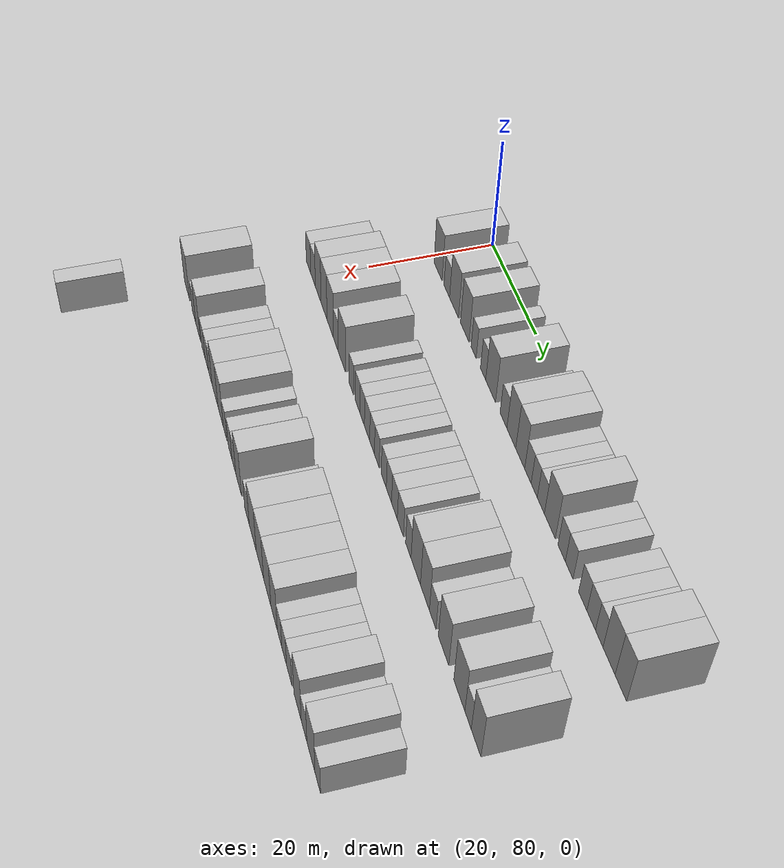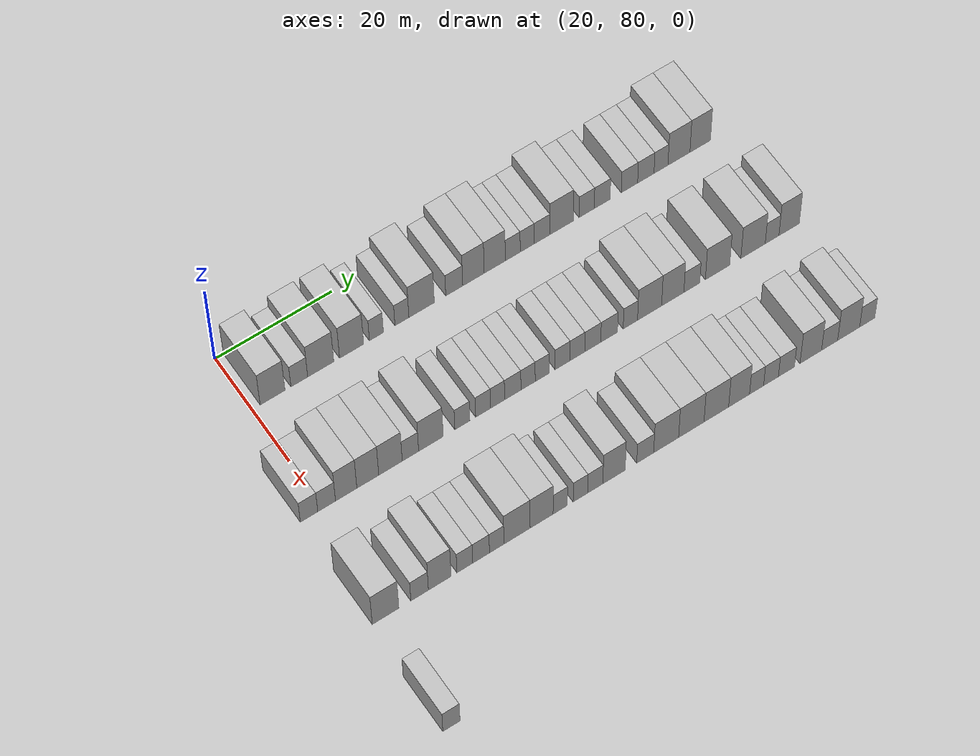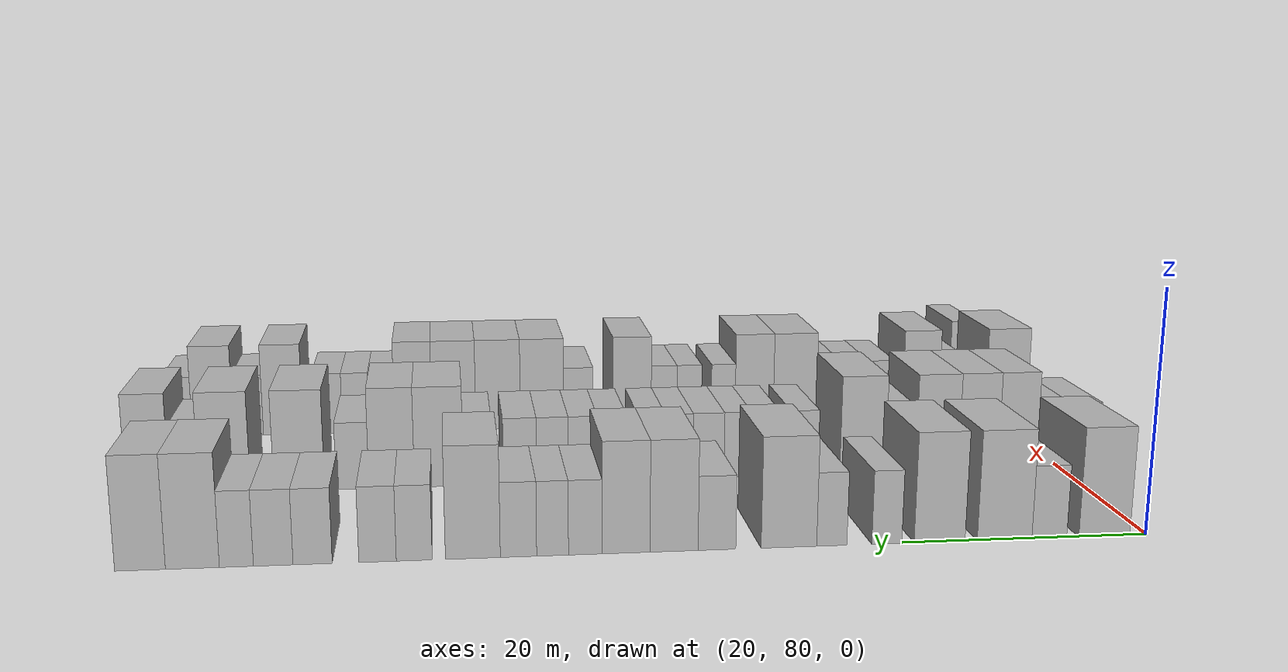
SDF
<sdf version="1.6">
 <world name="default">
  <model name="building_101">
   <static>1</static>
   <pose>25.0000 83.4963 0 0.000000 0.000000 0.000000</pose>
   <link name="link">
    <pose>0 0 4.50 0 0 0</pose>
    <collision name="collision"><geometry><box><size>10.0000 4.2292 9.0000</size></box></geometry></collision>
    <visual name="visual">
     <cast_shadows>0</cast_shadows>
     <geometry><box><size>10.0000 4.2292 9.0000</size></box></geometry>
     <material>
      <script>
       <uri>model://HANNAS_wall/materials/scripts</uri>
       <uri>model://HANNAS_wall/materials/textures</uri>
       <name>vrc/HANNAS_wall</name>
      </script>
     </material>
    </visual>
   </link>
  </model>
  <model name="building_102">
   <static>1</static>
   <pose>25.0000 88.0461 0 0.000000 0.000000 0.000000</pose>
   <link name="link">
    <pose>0 0 3.00 0 0 0</pose>
    <collision name="collision"><geometry><box><size>10.0000 2.8705 6.0000</size></box></geometry></collision>
    <visual name="visual">
     <cast_shadows>0</cast_shadows>
     <geometry><box><size>10.0000 2.8705 6.0000</size></box></geometry>
     <material>
      <script>
       <uri>model://HANNAS_wall/materials/scripts</uri>
       <uri>model://HANNAS_wall/materials/textures</uri>
       <name>vrc/HANNAS_wall</name>
      </script>
     </material>
    </visual>
   </link>
  </model>
  <model name="building_103">
   <static>1</static>
   <pose>25.0000 91.7144 0 0.000000 0.000000 0.000000</pose>
   <link name="link">
    <pose>0 0 4.50 0 0 0</pose>
    <collision name="collision"><geometry><box><size>10.0000 4.4660 9.0000</size></box></geometry></collision>
    <visual name="visual">
     <cast_shadows>0</cast_shadows>
     <geometry><box><size>10.0000 4.4660 9.0000</size></box></geometry>
     <material>
      <script>
       <uri>model://HANNAS_wall/materials/scripts</uri>
       <uri>model://HANNAS_wall/materials/textures</uri>
       <name>vrc/HANNAS_wall</name>
      </script>
     </material>
    </visual>
   </link>
  </model>
  <model name="building_104">
   <static>1</static>
   <pose>25.0000 97.0129 0 0.000000 0.000000 0.000000</pose>
   <link name="link">
    <pose>0 0 4.50 0 0 0</pose>
    <collision name="collision"><geometry><box><size>10.0000 4.1311 9.0000</size></box></geometry></collision>
    <visual name="visual">
     <cast_shadows>0</cast_shadows>
     <geometry><box><size>10.0000 4.1311 9.0000</size></box></geometry>
     <material>
      <script>
       <uri>model://HANNAS_wall/materials/scripts</uri>
       <uri>model://HANNAS_wall/materials/textures</uri>
       <name>vrc/HANNAS_wall</name>
      </script>
     </material>
    </visual>
   </link>
  </model>
  <model name="building_105">
   <static>1</static>
   <pose>25.0000 101.2852 0 0.000000 0.000000 0.000000</pose>
   <link name="link">
    <pose>0 0 3.00 0 0 0</pose>
    <collision name="collision"><geometry><box><size>10.0000 2.4136 6.0000</size></box></geometry></collision>
    <visual name="visual">
     <cast_shadows>0</cast_shadows>
     <geometry><box><size>10.0000 2.4136 6.0000</size></box></geometry>
     <material>
      <script>
       <uri>model://HANNAS_wall/materials/scripts</uri>
       <uri>model://HANNAS_wall/materials/textures</uri>
       <name>vrc/HANNAS_wall</name>
      </script>
     </material>
    </visual>
   </link>
  </model>
  <model name="building_106">
   <static>1</static>
   <pose>25.0000 105.7017 0 0.000000 0.000000 0.000000</pose>
   <link name="link">
    <pose>0 0 3.00 0 0 0</pose>
    <collision name="collision"><geometry><box><size>10.0000 2.4194 6.0000</size></box></geometry></collision>
    <visual name="visual">
     <cast_shadows>0</cast_shadows>
     <geometry><box><size>10.0000 2.4194 6.0000</size></box></geometry>
     <material>
      <script>
       <uri>model://HANNAS_wall/materials/scripts</uri>
       <uri>model://HANNAS_wall/materials/textures</uri>
       <name>vrc/HANNAS_wall</name>
      </script>
     </material>
    </visual>
   </link>
  </model>
  <model name="building_107">
   <static>1</static>
   <pose>25.0000 109.1212 0 0.000000 0.000000 0.000000</pose>
   <link name="link">
    <pose>0 0 4.50 0 0 0</pose>
    <collision name="collision"><geometry><box><size>10.0000 4.4195 9.0000</size></box></geometry></collision>
    <visual name="visual">
     <cast_shadows>0</cast_shadows>
     <geometry><box><size>10.0000 4.4195 9.0000</size></box></geometry>
     <material>
      <script>
       <uri>model://HANNAS_wall/materials/scripts</uri>
       <uri>model://HANNAS_wall/materials/textures</uri>
       <name>vrc/HANNAS_wall</name>
      </script>
     </material>
    </visual>
   </link>
  </model>
  <model name="building_108">
   <static>1</static>
   <pose>25.0000 114.8176 0 0.000000 0.000000 0.000000</pose>
   <link name="link">
    <pose>0 0 3.00 0 0 0</pose>
    <collision name="collision"><geometry><box><size>10.0000 2.9733 6.0000</size></box></geometry></collision>
    <visual name="visual">
     <cast_shadows>0</cast_shadows>
     <geometry><box><size>10.0000 2.9733 6.0000</size></box></geometry>
     <material>
      <script>
       <uri>model://HANNAS_wall/materials/scripts</uri>
       <uri>model://HANNAS_wall/materials/textures</uri>
       <name>vrc/HANNAS_wall</name>
      </script>
     </material>
    </visual>
   </link>
  </model>
  <model name="building_109">
   <static>1</static>
   <pose>25.0000 118.1870 0 0.000000 0.000000 0.000000</pose>
   <link name="link">
    <pose>0 0 4.50 0 0 0</pose>
    <collision name="collision"><geometry><box><size>10.0000 3.7657 9.0000</size></box></geometry></collision>
    <visual name="visual">
     <cast_shadows>0</cast_shadows>
     <geometry><box><size>10.0000 3.7657 9.0000</size></box></geometry>
     <material>
      <script>
       <uri>model://HANNAS_wall/materials/scripts</uri>
       <uri>model://HANNAS_wall/materials/textures</uri>
       <name>vrc/HANNAS_wall</name>
      </script>
     </material>
    </visual>
   </link>
  </model>
  <model name="building_110">
   <static>1</static>
   <pose>25.0000 121.9311 0 0.000000 0.000000 0.000000</pose>
   <link name="link">
    <pose>0 0 4.50 0 0 0</pose>
    <collision name="collision"><geometry><box><size>10.0000 3.7226 9.0000</size></box></geometry></collision>
    <visual name="visual">
     <cast_shadows>0</cast_shadows>
     <geometry><box><size>10.0000 3.7226 9.0000</size></box></geometry>
     <material>
      <script>
       <uri>model://HANNAS_wall/materials/scripts</uri>
       <uri>model://HANNAS_wall/materials/textures</uri>
       <name>vrc/HANNAS_wall</name>
      </script>
     </material>
    </visual>
   </link>
  </model>
  <model name="building_111">
   <static>1</static>
   <pose>25.0000 125.1039 0 0.000000 0.000000 0.000000</pose>
   <link name="link">
    <pose>0 0 3.00 0 0 0</pose>
    <collision name="collision"><geometry><box><size>10.0000 2.6230 6.0000</size></box></geometry></collision>
    <visual name="visual">
     <cast_shadows>0</cast_shadows>
     <geometry><box><size>10.0000 2.6230 6.0000</size></box></geometry>
     <material>
      <script>
       <uri>model://HANNAS_wall/materials/scripts</uri>
       <uri>model://HANNAS_wall/materials/textures</uri>
       <name>vrc/HANNAS_wall</name>
      </script>
     </material>
    </visual>
   </link>
  </model>
  <model name="building_112">
   <static>1</static>
   <pose>25.0000 127.6429 0 0.000000 0.000000 0.000000</pose>
   <link name="link">
    <pose>0 0 3.00 0 0 0</pose>
    <collision name="collision"><geometry><box><size>10.0000 2.4549 6.0000</size></box></geometry></collision>
    <visual name="visual">
     <cast_shadows>0</cast_shadows>
     <geometry><box><size>10.0000 2.4549 6.0000</size></box></geometry>
     <material>
      <script>
       <uri>model://HANNAS_wall/materials/scripts</uri>
       <uri>model://HANNAS_wall/materials/textures</uri>
       <name>vrc/HANNAS_wall</name>
      </script>
     </material>
    </visual>
   </link>
  </model>
  <model name="building_113">
   <static>1</static>
   <pose>25.0000 130.2681 0 0.000000 0.000000 0.000000</pose>
   <link name="link">
    <pose>0 0 3.00 0 0 0</pose>
    <collision name="collision"><geometry><box><size>10.0000 2.7955 6.0000</size></box></geometry></collision>
    <visual name="visual">
     <cast_shadows>0</cast_shadows>
     <geometry><box><size>10.0000 2.7955 6.0000</size></box></geometry>
     <material>
      <script>
       <uri>model://HANNAS_wall/materials/scripts</uri>
       <uri>model://HANNAS_wall/materials/textures</uri>
       <name>vrc/HANNAS_wall</name>
      </script>
     </material>
    </visual>
   </link>
  </model>
  <model name="building_114">
   <static>1</static>
   <pose>25.0000 133.7626 0 0.000000 0.000000 0.000000</pose>
   <link name="link">
    <pose>0 0 4.50 0 0 0</pose>
    <collision name="collision"><geometry><box><size>10.0000 4.1936 9.0000</size></box></geometry></collision>
    <visual name="visual">
     <cast_shadows>0</cast_shadows>
     <geometry><box><size>10.0000 4.1936 9.0000</size></box></geometry>
     <material>
      <script>
       <uri>model://HANNAS_wall/materials/scripts</uri>
       <uri>model://HANNAS_wall/materials/textures</uri>
       <name>vrc/HANNAS_wall</name>
      </script>
     </material>
    </visual>
   </link>
  </model>
  <model name="building_115">
   <static>1</static>
   <pose>25.0000 138.2246 0 0.000000 0.000000 0.000000</pose>
   <link name="link">
    <pose>0 0 3.00 0 0 0</pose>
    <collision name="collision"><geometry><box><size>10.0000 2.7302 6.0000</size></box></geometry></collision>
    <visual name="visual">
     <cast_shadows>0</cast_shadows>
     <geometry><box><size>10.0000 2.7302 6.0000</size></box></geometry>
     <material>
      <script>
       <uri>model://HANNAS_wall/materials/scripts</uri>
       <uri>model://HANNAS_wall/materials/textures</uri>
       <name>vrc/HANNAS_wall</name>
      </script>
     </material>
    </visual>
   </link>
  </model>
  <model name="building_116">
   <static>1</static>
   <pose>25.0000 141.0039 0 0.000000 0.000000 0.000000</pose>
   <link name="link">
    <pose>0 0 3.00 0 0 0</pose>
    <collision name="collision"><geometry><box><size>10.0000 2.8284 6.0000</size></box></geometry></collision>
    <visual name="visual">
     <cast_shadows>0</cast_shadows>
     <geometry><box><size>10.0000 2.8284 6.0000</size></box></geometry>
     <material>
      <script>
       <uri>model://HANNAS_wall/materials/scripts</uri>
       <uri>model://HANNAS_wall/materials/textures</uri>
       <name>vrc/HANNAS_wall</name>
      </script>
     </material>
    </visual>
   </link>
  </model>
  <model name="building_117">
   <static>1</static>
   <pose>25.0000 145.8851 0 0.000000 0.000000 0.000000</pose>
   <link name="link">
    <pose>0 0 3.00 0 0 0</pose>
    <collision name="collision"><geometry><box><size>10.0000 2.9339 6.0000</size></box></geometry></collision>
    <visual name="visual">
     <cast_shadows>0</cast_shadows>
     <geometry><box><size>10.0000 2.9339 6.0000</size></box></geometry>
     <material>
      <script>
       <uri>model://HANNAS_wall/materials/scripts</uri>
       <uri>model://HANNAS_wall/materials/textures</uri>
       <name>vrc/HANNAS_wall</name>
      </script>
     </material>
    </visual>
   </link>
  </model>
  <model name="building_118">
   <static>1</static>
   <pose>25.0000 148.8297 0 0.000000 0.000000 0.000000</pose>
   <link name="link">
    <pose>0 0 3.00 0 0 0</pose>
    <collision name="collision"><geometry><box><size>10.0000 2.9553 6.0000</size></box></geometry></collision>
    <visual name="visual">
     <cast_shadows>0</cast_shadows>
     <geometry><box><size>10.0000 2.9553 6.0000</size></box></geometry>
     <material>
      <script>
       <uri>model://HANNAS_wall/materials/scripts</uri>
       <uri>model://HANNAS_wall/materials/textures</uri>
       <name>vrc/HANNAS_wall</name>
      </script>
     </material>
    </visual>
   </link>
  </model>
  <model name="building_119">
   <static>1</static>
   <pose>25.0000 151.5702 0 0.000000 0.000000 0.000000</pose>
   <link name="link">
    <pose>0 0 3.00 0 0 0</pose>
    <collision name="collision"><geometry><box><size>10.0000 2.5258 6.0000</size></box></geometry></collision>
    <visual name="visual">
     <cast_shadows>0</cast_shadows>
     <geometry><box><size>10.0000 2.5258 6.0000</size></box></geometry>
     <material>
      <script>
       <uri>model://HANNAS_wall/materials/scripts</uri>
       <uri>model://HANNAS_wall/materials/textures</uri>
       <name>vrc/HANNAS_wall</name>
      </script>
     </material>
    </visual>
   </link>
  </model>
  <model name="building_120">
   <static>1</static>
   <pose>25.0000 154.8257 0 0.000000 0.000000 0.000000</pose>
   <link name="link">
    <pose>0 0 4.50 0 0 0</pose>
    <collision name="collision"><geometry><box><size>10.0000 3.9853 9.0000</size></box></geometry></collision>
    <visual name="visual">
     <cast_shadows>0</cast_shadows>
     <geometry><box><size>10.0000 3.9853 9.0000</size></box></geometry>
     <material>
      <script>
       <uri>model://HANNAS_wall/materials/scripts</uri>
       <uri>model://HANNAS_wall/materials/textures</uri>
       <name>vrc/HANNAS_wall</name>
      </script>
     </material>
    </visual>
   </link>
  </model>
  <model name="building_121">
   <static>1</static>
   <pose>25.0000 158.6795 0 0.000000 0.000000 0.000000</pose>
   <link name="link">
    <pose>0 0 4.50 0 0 0</pose>
    <collision name="collision"><geometry><box><size>10.0000 3.7222 9.0000</size></box></geometry></collision>
    <visual name="visual">
     <cast_shadows>0</cast_shadows>
     <geometry><box><size>10.0000 3.7222 9.0000</size></box></geometry>
     <material>
      <script>
       <uri>model://HANNAS_wall/materials/scripts</uri>
       <uri>model://HANNAS_wall/materials/textures</uri>
       <name>vrc/HANNAS_wall</name>
      </script>
     </material>
    </visual>
   </link>
  </model>
  <model name="building_269">
   <static>1</static>
   <pose>44.0000 77.6205 0 0.000000 0.000000 0.000000</pose>
   <link name="link">
    <pose>0 0 3.00 0 0 0</pose>
    <collision name="collision"><geometry><box><size>10.0000 2.9257 6.0000</size></box></geometry></collision>
    <visual name="visual">
     <cast_shadows>0</cast_shadows>
     <geometry><box><size>10.0000 2.9257 6.0000</size></box></geometry>
     <material>
      <script>
       <uri>model://HANNAS_wall/materials/scripts</uri>
       <uri>model://HANNAS_wall/materials/textures</uri>
       <name>vrc/HANNAS_wall</name>
      </script>
     </material>
    </visual>
   </link>
  </model>
  <model name="building_270">
   <static>1</static>
   <pose>44.0000 80.5798 0 0.000000 0.000000 0.000000</pose>
   <link name="link">
    <pose>0 0 3.00 0 0 0</pose>
    <collision name="collision"><geometry><box><size>10.0000 2.9930 6.0000</size></box></geometry></collision>
    <visual name="visual">
     <cast_shadows>0</cast_shadows>
     <geometry><box><size>10.0000 2.9930 6.0000</size></box></geometry>
     <material>
      <script>
       <uri>model://HANNAS_wall/materials/scripts</uri>
       <uri>model://HANNAS_wall/materials/textures</uri>
       <name>vrc/HANNAS_wall</name>
      </script>
     </material>
    </visual>
   </link>
  </model>
  <model name="building_271">
   <static>1</static>
   <pose>44.0000 83.8766 0 0.000000 0.000000 0.000000</pose>
   <link name="link">
    <pose>0 0 4.50 0 0 0</pose>
    <collision name="collision"><geometry><box><size>10.0000 3.6007 9.0000</size></box></geometry></collision>
    <visual name="visual">
     <cast_shadows>0</cast_shadows>
     <geometry><box><size>10.0000 3.6007 9.0000</size></box></geometry>
     <material>
      <script>
       <uri>model://HANNAS_wall/materials/scripts</uri>
       <uri>model://HANNAS_wall/materials/textures</uri>
       <name>vrc/HANNAS_wall</name>
      </script>
     </material>
    </visual>
   </link>
  </model>
  <model name="building_272">
   <static>1</static>
   <pose>44.0000 87.5289 0 0.000000 0.000000 0.000000</pose>
   <link name="link">
    <pose>0 0 4.50 0 0 0</pose>
    <collision name="collision"><geometry><box><size>10.0000 3.7039 9.0000</size></box></geometry></collision>
    <visual name="visual">
     <cast_shadows>0</cast_shadows>
     <geometry><box><size>10.0000 3.7039 9.0000</size></box></geometry>
     <material>
      <script>
       <uri>model://HANNAS_wall/materials/scripts</uri>
       <uri>model://HANNAS_wall/materials/textures</uri>
       <name>vrc/HANNAS_wall</name>
      </script>
     </material>
    </visual>
   </link>
  </model>
  <model name="building_273">
   <static>1</static>
   <pose>44.0000 91.3777 0 0.000000 0.000000 0.000000</pose>
   <link name="link">
    <pose>0 0 4.50 0 0 0</pose>
    <collision name="collision"><geometry><box><size>10.0000 3.9936 9.0000</size></box></geometry></collision>
    <visual name="visual">
     <cast_shadows>0</cast_shadows>
     <geometry><box><size>10.0000 3.9936 9.0000</size></box></geometry>
     <material>
      <script>
       <uri>model://HANNAS_wall/materials/scripts</uri>
       <uri>model://HANNAS_wall/materials/textures</uri>
       <name>vrc/HANNAS_wall</name>
      </script>
     </material>
    </visual>
   </link>
  </model>
  <model name="building_274">
   <static>1</static>
   <pose>44.0000 94.7728 0 0.000000 0.000000 0.000000</pose>
   <link name="link">
    <pose>0 0 3.00 0 0 0</pose>
    <collision name="collision"><geometry><box><size>10.0000 2.7967 6.0000</size></box></geometry></collision>
    <visual name="visual">
     <cast_shadows>0</cast_shadows>
     <geometry><box><size>10.0000 2.7967 6.0000</size></box></geometry>
     <material>
      <script>
       <uri>model://HANNAS_wall/materials/scripts</uri>
       <uri>model://HANNAS_wall/materials/textures</uri>
       <name>vrc/HANNAS_wall</name>
      </script>
     </material>
    </visual>
   </link>
  </model>
  <model name="building_275">
   <static>1</static>
   <pose>44.0000 98.2723 0 0.000000 0.000000 0.000000</pose>
   <link name="link">
    <pose>0 0 4.50 0 0 0</pose>
    <collision name="collision"><geometry><box><size>10.0000 4.2023 9.0000</size></box></geometry></collision>
    <visual name="visual">
     <cast_shadows>0</cast_shadows>
     <geometry><box><size>10.0000 4.2023 9.0000</size></box></geometry>
     <material>
      <script>
       <uri>model://HANNAS_wall/materials/scripts</uri>
       <uri>model://HANNAS_wall/materials/textures</uri>
       <name>vrc/HANNAS_wall</name>
      </script>
     </material>
    </visual>
   </link>
  </model>
  <model name="building_276">
   <static>1</static>
   <pose>44.0000 103.6641 0 0.000000 0.000000 0.000000</pose>
   <link name="link">
    <pose>0 0 3.00 0 0 0</pose>
    <collision name="collision"><geometry><box><size>10.0000 2.5812 6.0000</size></box></geometry></collision>
    <visual name="visual">
     <cast_shadows>0</cast_shadows>
     <geometry><box><size>10.0000 2.5812 6.0000</size></box></geometry>
     <material>
      <script>
       <uri>model://HANNAS_wall/materials/scripts</uri>
       <uri>model://HANNAS_wall/materials/textures</uri>
       <name>vrc/HANNAS_wall</name>
      </script>
     </material>
    </visual>
   </link>
  </model>
  <model name="building_277">
   <static>1</static>
   <pose>44.0000 107.2426 0 0.000000 0.000000 0.000000</pose>
   <link name="link">
    <pose>0 0 3.00 0 0 0</pose>
    <collision name="collision"><geometry><box><size>10.0000 2.5758 6.0000</size></box></geometry></collision>
    <visual name="visual">
     <cast_shadows>0</cast_shadows>
     <geometry><box><size>10.0000 2.5758 6.0000</size></box></geometry>
     <material>
      <script>
       <uri>model://HANNAS_wall/materials/scripts</uri>
       <uri>model://HANNAS_wall/materials/textures</uri>
       <name>vrc/HANNAS_wall</name>
      </script>
     </material>
    </visual>
   </link>
  </model>
  <model name="building_278">
   <static>1</static>
   <pose>44.0000 109.7421 0 0.000000 0.000000 0.000000</pose>
   <link name="link">
    <pose>0 0 3.00 0 0 0</pose>
    <collision name="collision"><geometry><box><size>10.0000 2.4234 6.0000</size></box></geometry></collision>
    <visual name="visual">
     <cast_shadows>0</cast_shadows>
     <geometry><box><size>10.0000 2.4234 6.0000</size></box></geometry>
     <material>
      <script>
       <uri>model://HANNAS_wall/materials/scripts</uri>
       <uri>model://HANNAS_wall/materials/textures</uri>
       <name>vrc/HANNAS_wall</name>
      </script>
     </material>
    </visual>
   </link>
  </model>
  <model name="building_279">
   <static>1</static>
   <pose>44.0000 112.3672 0 0.000000 0.000000 0.000000</pose>
   <link name="link">
    <pose>0 0 3.00 0 0 0</pose>
    <collision name="collision"><geometry><box><size>10.0000 2.8268 6.0000</size></box></geometry></collision>
    <visual name="visual">
     <cast_shadows>0</cast_shadows>
     <geometry><box><size>10.0000 2.8268 6.0000</size></box></geometry>
     <material>
      <script>
       <uri>model://HANNAS_wall/materials/scripts</uri>
       <uri>model://HANNAS_wall/materials/textures</uri>
       <name>vrc/HANNAS_wall</name>
      </script>
     </material>
    </visual>
   </link>
  </model>
  <model name="building_280">
   <static>1</static>
   <pose>44.0000 115.0189 0 0.000000 0.000000 0.000000</pose>
   <link name="link">
    <pose>0 0 3.00 0 0 0</pose>
    <collision name="collision"><geometry><box><size>10.0000 2.4765 6.0000</size></box></geometry></collision>
    <visual name="visual">
     <cast_shadows>0</cast_shadows>
     <geometry><box><size>10.0000 2.4765 6.0000</size></box></geometry>
     <material>
      <script>
       <uri>model://HANNAS_wall/materials/scripts</uri>
       <uri>model://HANNAS_wall/materials/textures</uri>
       <name>vrc/HANNAS_wall</name>
      </script>
     </material>
    </visual>
   </link>
  </model>
  <model name="building_281">
   <static>1</static>
   <pose>44.0000 117.4946 0 0.000000 0.000000 0.000000</pose>
   <link name="link">
    <pose>0 0 3.00 0 0 0</pose>
    <collision name="collision"><geometry><box><size>10.0000 2.4749 6.0000</size></box></geometry></collision>
    <visual name="visual">
     <cast_shadows>0</cast_shadows>
     <geometry><box><size>10.0000 2.4749 6.0000</size></box></geometry>
     <material>
      <script>
       <uri>model://HANNAS_wall/materials/scripts</uri>
       <uri>model://HANNAS_wall/materials/textures</uri>
       <name>vrc/HANNAS_wall</name>
      </script>
     </material>
    </visual>
   </link>
  </model>
  <model name="building_282">
   <static>1</static>
   <pose>44.0000 121.0312 0 0.000000 0.000000 0.000000</pose>
   <link name="link">
    <pose>0 0 3.00 0 0 0</pose>
    <collision name="collision"><geometry><box><size>10.0000 2.5983 6.0000</size></box></geometry></collision>
    <visual name="visual">
     <cast_shadows>0</cast_shadows>
     <geometry><box><size>10.0000 2.5983 6.0000</size></box></geometry>
     <material>
      <script>
       <uri>model://HANNAS_wall/materials/scripts</uri>
       <uri>model://HANNAS_wall/materials/textures</uri>
       <name>vrc/HANNAS_wall</name>
      </script>
     </material>
    </visual>
   </link>
  </model>
  <model name="building_283">
   <static>1</static>
   <pose>44.0000 123.6171 0 0.000000 0.000000 0.000000</pose>
   <link name="link">
    <pose>0 0 3.00 0 0 0</pose>
    <collision name="collision"><geometry><box><size>10.0000 2.5735 6.0000</size></box></geometry></collision>
    <visual name="visual">
     <cast_shadows>0</cast_shadows>
     <geometry><box><size>10.0000 2.5735 6.0000</size></box></geometry>
     <material>
      <script>
       <uri>model://HANNAS_wall/materials/scripts</uri>
       <uri>model://HANNAS_wall/materials/textures</uri>
       <name>vrc/HANNAS_wall</name>
      </script>
     </material>
    </visual>
   </link>
  </model>
  <model name="building_284">
   <static>1</static>
   <pose>44.0000 126.3140 0 0.000000 0.000000 0.000000</pose>
   <link name="link">
    <pose>0 0 3.00 0 0 0</pose>
    <collision name="collision"><geometry><box><size>10.0000 2.8205 6.0000</size></box></geometry></collision>
    <visual name="visual">
     <cast_shadows>0</cast_shadows>
     <geometry><box><size>10.0000 2.8205 6.0000</size></box></geometry>
     <material>
      <script>
       <uri>model://HANNAS_wall/materials/scripts</uri>
       <uri>model://HANNAS_wall/materials/textures</uri>
       <name>vrc/HANNAS_wall</name>
      </script>
     </material>
    </visual>
   </link>
  </model>
  <model name="building_285">
   <static>1</static>
   <pose>44.0000 129.1944 0 0.000000 0.000000 0.000000</pose>
   <link name="link">
    <pose>0 0 3.00 0 0 0</pose>
    <collision name="collision"><geometry><box><size>10.0000 2.9402 6.0000</size></box></geometry></collision>
    <visual name="visual">
     <cast_shadows>0</cast_shadows>
     <geometry><box><size>10.0000 2.9402 6.0000</size></box></geometry>
     <material>
      <script>
       <uri>model://HANNAS_wall/materials/scripts</uri>
       <uri>model://HANNAS_wall/materials/textures</uri>
       <name>vrc/HANNAS_wall</name>
      </script>
     </material>
    </visual>
   </link>
  </model>
  <model name="building_286">
   <static>1</static>
   <pose>44.0000 132.9292 0 0.000000 0.000000 0.000000</pose>
   <link name="link">
    <pose>0 0 3.00 0 0 0</pose>
    <collision name="collision"><geometry><box><size>10.0000 2.5294 6.0000</size></box></geometry></collision>
    <visual name="visual">
     <cast_shadows>0</cast_shadows>
     <geometry><box><size>10.0000 2.5294 6.0000</size></box></geometry>
     <material>
      <script>
       <uri>model://HANNAS_wall/materials/scripts</uri>
       <uri>model://HANNAS_wall/materials/textures</uri>
       <name>vrc/HANNAS_wall</name>
      </script>
     </material>
    </visual>
   </link>
  </model>
  <model name="building_287">
   <static>1</static>
   <pose>44.0000 136.3269 0 0.000000 0.000000 0.000000</pose>
   <link name="link">
    <pose>0 0 4.50 0 0 0</pose>
    <collision name="collision"><geometry><box><size>10.0000 4.2661 9.0000</size></box></geometry></collision>
    <visual name="visual">
     <cast_shadows>0</cast_shadows>
     <geometry><box><size>10.0000 4.2661 9.0000</size></box></geometry>
     <material>
      <script>
       <uri>model://HANNAS_wall/materials/scripts</uri>
       <uri>model://HANNAS_wall/materials/textures</uri>
       <name>vrc/HANNAS_wall</name>
      </script>
     </material>
    </visual>
   </link>
  </model>
  <model name="building_288">
   <static>1</static>
   <pose>44.0000 140.4397 0 0.000000 0.000000 0.000000</pose>
   <link name="link">
    <pose>0 0 4.50 0 0 0</pose>
    <collision name="collision"><geometry><box><size>10.0000 3.9594 9.0000</size></box></geometry></collision>
    <visual name="visual">
     <cast_shadows>0</cast_shadows>
     <geometry><box><size>10.0000 3.9594 9.0000</size></box></geometry>
     <material>
      <script>
       <uri>model://HANNAS_wall/materials/scripts</uri>
       <uri>model://HANNAS_wall/materials/textures</uri>
       <name>vrc/HANNAS_wall</name>
      </script>
     </material>
    </visual>
   </link>
  </model>
  <model name="building_289">
   <static>1</static>
   <pose>44.0000 143.8342 0 0.000000 0.000000 0.000000</pose>
   <link name="link">
    <pose>0 0 3.00 0 0 0</pose>
    <collision name="collision"><geometry><box><size>10.0000 2.8296 6.0000</size></box></geometry></collision>
    <visual name="visual">
     <cast_shadows>0</cast_shadows>
     <geometry><box><size>10.0000 2.8296 6.0000</size></box></geometry>
     <material>
      <script>
       <uri>model://HANNAS_wall/materials/scripts</uri>
       <uri>model://HANNAS_wall/materials/textures</uri>
       <name>vrc/HANNAS_wall</name>
      </script>
     </material>
    </visual>
   </link>
  </model>
  <model name="building_290">
   <static>1</static>
   <pose>44.0000 148.4282 0 0.000000 0.000000 0.000000</pose>
   <link name="link">
    <pose>0 0 4.50 0 0 0</pose>
    <collision name="collision"><geometry><box><size>10.0000 4.3584 9.0000</size></box></geometry></collision>
    <visual name="visual">
     <cast_shadows>0</cast_shadows>
     <geometry><box><size>10.0000 4.3584 9.0000</size></box></geometry>
     <material>
      <script>
       <uri>model://HANNAS_wall/materials/scripts</uri>
       <uri>model://HANNAS_wall/materials/textures</uri>
       <name>vrc/HANNAS_wall</name>
      </script>
     </material>
    </visual>
   </link>
  </model>
  <model name="building_291">
   <static>1</static>
   <pose>44.0000 154.8033 0 0.000000 0.000000 0.000000</pose>
   <link name="link">
    <pose>0 0 4.50 0 0 0</pose>
    <collision name="collision"><geometry><box><size>10.0000 4.3918 9.0000</size></box></geometry></collision>
    <visual name="visual">
     <cast_shadows>0</cast_shadows>
     <geometry><box><size>10.0000 4.3918 9.0000</size></box></geometry>
     <material>
      <script>
       <uri>model://HANNAS_wall/materials/scripts</uri>
       <uri>model://HANNAS_wall/materials/textures</uri>
       <name>vrc/HANNAS_wall</name>
      </script>
     </material>
    </visual>
   </link>
  </model>
  <model name="building_292">
   <static>1</static>
   <pose>44.0000 158.2389 0 0.000000 0.000000 0.000000</pose>
   <link name="link">
    <pose>0 0 3.00 0 0 0</pose>
    <collision name="collision"><geometry><box><size>10.0000 2.4793 6.0000</size></box></geometry></collision>
    <visual name="visual">
     <cast_shadows>0</cast_shadows>
     <geometry><box><size>10.0000 2.4793 6.0000</size></box></geometry>
     <material>
      <script>
       <uri>model://HANNAS_wall/materials/scripts</uri>
       <uri>model://HANNAS_wall/materials/textures</uri>
       <name>vrc/HANNAS_wall</name>
      </script>
     </material>
    </visual>
   </link>
  </model>
  <model name="building_293">
   <static>1</static>
   <pose>44.0000 161.3177 0 0.000000 0.000000 0.000000</pose>
   <link name="link">
    <pose>0 0 4.50 0 0 0</pose>
    <collision name="collision"><geometry><box><size>10.0000 3.6782 9.0000</size></box></geometry></collision>
    <visual name="visual">
     <cast_shadows>0</cast_shadows>
     <geometry><box><size>10.0000 3.6782 9.0000</size></box></geometry>
     <material>
      <script>
       <uri>model://HANNAS_wall/materials/scripts</uri>
       <uri>model://HANNAS_wall/materials/textures</uri>
       <name>vrc/HANNAS_wall</name>
      </script>
     </material>
    </visual>
   </link>
  </model>
  <model name="building_453">
   <static>1</static>
   <pose>63.0000 78.2139 0 0.000000 0.000000 0.000000</pose>
   <link name="link">
    <pose>0 0 4.50 0 0 0</pose>
    <collision name="collision"><geometry><box><size>10.0000 4.4359 9.0000</size></box></geometry></collision>
    <visual name="visual">
     <cast_shadows>0</cast_shadows>
     <geometry><box><size>10.0000 4.4359 9.0000</size></box></geometry>
     <material>
      <script>
       <uri>model://HANNAS_wall/materials/scripts</uri>
       <uri>model://HANNAS_wall/materials/textures</uri>
       <name>vrc/HANNAS_wall</name>
      </script>
     </material>
    </visual>
   </link>
  </model>
  <model name="building_454">
   <static>1</static>
   <pose>63.0000 83.9051 0 0.000000 0.000000 0.000000</pose>
   <link name="link">
    <pose>0 0 3.00 0 0 0</pose>
    <collision name="collision"><geometry><box><size>10.0000 2.9465 6.0000</size></box></geometry></collision>
    <visual name="visual">
     <cast_shadows>0</cast_shadows>
     <geometry><box><size>10.0000 2.9465 6.0000</size></box></geometry>
     <material>
      <script>
       <uri>model://HANNAS_wall/materials/scripts</uri>
       <uri>model://HANNAS_wall/materials/textures</uri>
       <name>vrc/HANNAS_wall</name>
      </script>
     </material>
    </visual>
   </link>
  </model>
  <model name="building_455">
   <static>1</static>
   <pose>63.0000 87.2789 0 0.000000 0.000000 0.000000</pose>
   <link name="link">
    <pose>0 0 4.50 0 0 0</pose>
    <collision name="collision"><geometry><box><size>10.0000 3.8010 9.0000</size></box></geometry></collision>
    <visual name="visual">
     <cast_shadows>0</cast_shadows>
     <geometry><box><size>10.0000 3.8010 9.0000</size></box></geometry>
     <material>
      <script>
       <uri>model://HANNAS_wall/materials/scripts</uri>
       <uri>model://HANNAS_wall/materials/textures</uri>
       <name>vrc/HANNAS_wall</name>
      </script>
     </material>
    </visual>
   </link>
  </model>
  <model name="building_456">
   <static>1</static>
   <pose>63.0000 91.5072 0 0.000000 0.000000 0.000000</pose>
   <link name="link">
    <pose>0 0 3.00 0 0 0</pose>
    <collision name="collision"><geometry><box><size>10.0000 2.6557 6.0000</size></box></geometry></collision>
    <visual name="visual">
     <cast_shadows>0</cast_shadows>
     <geometry><box><size>10.0000 2.6557 6.0000</size></box></geometry>
     <material>
      <script>
       <uri>model://HANNAS_wall/materials/scripts</uri>
       <uri>model://HANNAS_wall/materials/textures</uri>
       <name>vrc/HANNAS_wall</name>
      </script>
     </material>
    </visual>
   </link>
  </model>
  <model name="building_457">
   <static>1</static>
   <pose>63.0000 94.2543 0 0.000000 0.000000 0.000000</pose>
   <link name="link">
    <pose>0 0 3.00 0 0 0</pose>
    <collision name="collision"><geometry><box><size>10.0000 2.8384 6.0000</size></box></geometry></collision>
    <visual name="visual">
     <cast_shadows>0</cast_shadows>
     <geometry><box><size>10.0000 2.8384 6.0000</size></box></geometry>
     <material>
      <script>
       <uri>model://HANNAS_wall/materials/scripts</uri>
       <uri>model://HANNAS_wall/materials/textures</uri>
       <name>vrc/HANNAS_wall</name>
      </script>
     </material>
    </visual>
   </link>
  </model>
  <model name="building_458">
   <static>1</static>
   <pose>63.0000 96.9023 0 0.000000 0.000000 0.000000</pose>
   <link name="link">
    <pose>0 0 3.00 0 0 0</pose>
    <collision name="collision"><geometry><box><size>10.0000 2.4577 6.0000</size></box></geometry></collision>
    <visual name="visual">
     <cast_shadows>0</cast_shadows>
     <geometry><box><size>10.0000 2.4577 6.0000</size></box></geometry>
     <material>
      <script>
       <uri>model://HANNAS_wall/materials/scripts</uri>
       <uri>model://HANNAS_wall/materials/textures</uri>
       <name>vrc/HANNAS_wall</name>
      </script>
     </material>
    </visual>
   </link>
  </model>
  <model name="building_459">
   <static>1</static>
   <pose>63.0000 100.3597 0 0.000000 0.000000 0.000000</pose>
   <link name="link">
    <pose>0 0 4.50 0 0 0</pose>
    <collision name="collision"><geometry><box><size>10.0000 4.4569 9.0000</size></box></geometry></collision>
    <visual name="visual">
     <cast_shadows>0</cast_shadows>
     <geometry><box><size>10.0000 4.4569 9.0000</size></box></geometry>
     <material>
      <script>
       <uri>model://HANNAS_wall/materials/scripts</uri>
       <uri>model://HANNAS_wall/materials/textures</uri>
       <name>vrc/HANNAS_wall</name>
      </script>
     </material>
    </visual>
   </link>
  </model>
  <model name="building_460">
   <static>1</static>
   <pose>63.0000 104.5477 0 0.000000 0.000000 0.000000</pose>
   <link name="link">
    <pose>0 0 4.50 0 0 0</pose>
    <collision name="collision"><geometry><box><size>10.0000 3.9192 9.0000</size></box></geometry></collision>
    <visual name="visual">
     <cast_shadows>0</cast_shadows>
     <geometry><box><size>10.0000 3.9192 9.0000</size></box></geometry>
     <material>
      <script>
       <uri>model://HANNAS_wall/materials/scripts</uri>
       <uri>model://HANNAS_wall/materials/textures</uri>
       <name>vrc/HANNAS_wall</name>
      </script>
     </material>
    </visual>
   </link>
  </model>
  <model name="building_461">
   <static>1</static>
   <pose>63.0000 107.7293 0 0.000000 0.000000 0.000000</pose>
   <link name="link">
    <pose>0 0 3.00 0 0 0</pose>
    <collision name="collision"><geometry><box><size>10.0000 2.4439 6.0000</size></box></geometry></collision>
    <visual name="visual">
     <cast_shadows>0</cast_shadows>
     <geometry><box><size>10.0000 2.4439 6.0000</size></box></geometry>
     <material>
      <script>
       <uri>model://HANNAS_wall/materials/scripts</uri>
       <uri>model://HANNAS_wall/materials/textures</uri>
       <name>vrc/HANNAS_wall</name>
      </script>
     </material>
    </visual>
   </link>
  </model>
  <model name="building_462">
   <static>1</static>
   <pose>63.0000 111.2057 0 0.000000 0.000000 0.000000</pose>
   <link name="link">
    <pose>0 0 3.00 0 0 0</pose>
    <collision name="collision"><geometry><box><size>10.0000 2.5087 6.0000</size></box></geometry></collision>
    <visual name="visual">
     <cast_shadows>0</cast_shadows>
     <geometry><box><size>10.0000 2.5087 6.0000</size></box></geometry>
     <material>
      <script>
       <uri>model://HANNAS_wall/materials/scripts</uri>
       <uri>model://HANNAS_wall/materials/textures</uri>
       <name>vrc/HANNAS_wall</name>
      </script>
     </material>
    </visual>
   </link>
  </model>
  <model name="building_463">
   <static>1</static>
   <pose>63.0000 113.7598 0 0.000000 0.000000 0.000000</pose>
   <link name="link">
    <pose>0 0 3.00 0 0 0</pose>
    <collision name="collision"><geometry><box><size>10.0000 2.5996 6.0000</size></box></geometry></collision>
    <visual name="visual">
     <cast_shadows>0</cast_shadows>
     <geometry><box><size>10.0000 2.5996 6.0000</size></box></geometry>
     <material>
      <script>
       <uri>model://HANNAS_wall/materials/scripts</uri>
       <uri>model://HANNAS_wall/materials/textures</uri>
       <name>vrc/HANNAS_wall</name>
      </script>
     </material>
    </visual>
   </link>
  </model>
  <model name="building_464">
   <static>1</static>
   <pose>63.0000 116.9877 0 0.000000 0.000000 0.000000</pose>
   <link name="link">
    <pose>0 0 4.50 0 0 0</pose>
    <collision name="collision"><geometry><box><size>10.0000 3.8562 9.0000</size></box></geometry></collision>
    <visual name="visual">
     <cast_shadows>0</cast_shadows>
     <geometry><box><size>10.0000 3.8562 9.0000</size></box></geometry>
     <material>
      <script>
       <uri>model://HANNAS_wall/materials/scripts</uri>
       <uri>model://HANNAS_wall/materials/textures</uri>
       <name>vrc/HANNAS_wall</name>
      </script>
     </material>
    </visual>
   </link>
  </model>
  <model name="building_465">
   <static>1</static>
   <pose>63.0000 122.3874 0 0.000000 0.000000 0.000000</pose>
   <link name="link">
    <pose>0 0 3.00 0 0 0</pose>
    <collision name="collision"><geometry><box><size>10.0000 2.9430 6.0000</size></box></geometry></collision>
    <visual name="visual">
     <cast_shadows>0</cast_shadows>
     <geometry><box><size>10.0000 2.9430 6.0000</size></box></geometry>
     <material>
      <script>
       <uri>model://HANNAS_wall/materials/scripts</uri>
       <uri>model://HANNAS_wall/materials/textures</uri>
       <name>vrc/HANNAS_wall</name>
      </script>
     </material>
    </visual>
   </link>
  </model>
  <model name="building_466">
   <static>1</static>
   <pose>63.0000 126.0303 0 0.000000 0.000000 0.000000</pose>
   <link name="link">
    <pose>0 0 4.50 0 0 0</pose>
    <collision name="collision"><geometry><box><size>10.0000 4.3429 9.0000</size></box></geometry></collision>
    <visual name="visual">
     <cast_shadows>0</cast_shadows>
     <geometry><box><size>10.0000 4.3429 9.0000</size></box></geometry>
     <material>
      <script>
       <uri>model://HANNAS_wall/materials/scripts</uri>
       <uri>model://HANNAS_wall/materials/textures</uri>
       <name>vrc/HANNAS_wall</name>
      </script>
     </material>
    </visual>
   </link>
  </model>
  <model name="building_467">
   <static>1</static>
   <pose>63.0000 130.4237 0 0.000000 0.000000 0.000000</pose>
   <link name="link">
    <pose>0 0 4.50 0 0 0</pose>
    <collision name="collision"><geometry><box><size>10.0000 4.4438 9.0000</size></box></geometry></collision>
    <visual name="visual">
     <cast_shadows>0</cast_shadows>
     <geometry><box><size>10.0000 4.4438 9.0000</size></box></geometry>
     <material>
      <script>
       <uri>model://HANNAS_wall/materials/scripts</uri>
       <uri>model://HANNAS_wall/materials/textures</uri>
       <name>vrc/HANNAS_wall</name>
      </script>
     </material>
    </visual>
   </link>
  </model>
  <model name="building_468">
   <static>1</static>
   <pose>63.0000 134.8110 0 0.000000 0.000000 0.000000</pose>
   <link name="link">
    <pose>0 0 4.50 0 0 0</pose>
    <collision name="collision"><geometry><box><size>10.0000 4.3308 9.0000</size></box></geometry></collision>
    <visual name="visual">
     <cast_shadows>0</cast_shadows>
     <geometry><box><size>10.0000 4.3308 9.0000</size></box></geometry>
     <material>
      <script>
       <uri>model://HANNAS_wall/materials/scripts</uri>
       <uri>model://HANNAS_wall/materials/textures</uri>
       <name>vrc/HANNAS_wall</name>
      </script>
     </material>
    </visual>
   </link>
  </model>
  <model name="building_469">
   <static>1</static>
   <pose>63.0000 138.8194 0 0.000000 0.000000 0.000000</pose>
   <link name="link">
    <pose>0 0 4.50 0 0 0</pose>
    <collision name="collision"><geometry><box><size>10.0000 3.6861 9.0000</size></box></geometry></collision>
    <visual name="visual">
     <cast_shadows>0</cast_shadows>
     <geometry><box><size>10.0000 3.6861 9.0000</size></box></geometry>
     <material>
      <script>
       <uri>model://HANNAS_wall/materials/scripts</uri>
       <uri>model://HANNAS_wall/materials/textures</uri>
       <name>vrc/HANNAS_wall</name>
      </script>
     </material>
    </visual>
   </link>
  </model>
  <model name="building_470">
   <static>1</static>
   <pose>63.0000 141.9071 0 0.000000 0.000000 0.000000</pose>
   <link name="link">
    <pose>0 0 3.00 0 0 0</pose>
    <collision name="collision"><geometry><box><size>10.0000 2.4891 6.0000</size></box></geometry></collision>
    <visual name="visual">
     <cast_shadows>0</cast_shadows>
     <geometry><box><size>10.0000 2.4891 6.0000</size></box></geometry>
     <material>
      <script>
       <uri>model://HANNAS_wall/materials/scripts</uri>
       <uri>model://HANNAS_wall/materials/textures</uri>
       <name>vrc/HANNAS_wall</name>
      </script>
     </material>
    </visual>
   </link>
  </model>
  <model name="building_471">
   <static>1</static>
   <pose>63.0000 144.4588 0 0.000000 0.000000 0.000000</pose>
   <link name="link">
    <pose>0 0 3.00 0 0 0</pose>
    <collision name="collision"><geometry><box><size>10.0000 2.6144 6.0000</size></box></geometry></collision>
    <visual name="visual">
     <cast_shadows>0</cast_shadows>
     <geometry><box><size>10.0000 2.6144 6.0000</size></box></geometry>
     <material>
      <script>
       <uri>model://HANNAS_wall/materials/scripts</uri>
       <uri>model://HANNAS_wall/materials/textures</uri>
       <name>vrc/HANNAS_wall</name>
      </script>
     </material>
    </visual>
   </link>
  </model>
  <model name="building_472">
   <static>1</static>
   <pose>63.0000 147.1888 0 0.000000 0.000000 0.000000</pose>
   <link name="link">
    <pose>0 0 3.00 0 0 0</pose>
    <collision name="collision"><geometry><box><size>10.0000 2.8455 6.0000</size></box></geometry></collision>
    <visual name="visual">
     <cast_shadows>0</cast_shadows>
     <geometry><box><size>10.0000 2.8455 6.0000</size></box></geometry>
     <material>
      <script>
       <uri>model://HANNAS_wall/materials/scripts</uri>
       <uri>model://HANNAS_wall/materials/textures</uri>
       <name>vrc/HANNAS_wall</name>
      </script>
     </material>
    </visual>
   </link>
  </model>
  <model name="building_473">
   <static>1</static>
   <pose>63.0000 151.5348 0 0.000000 0.000000 0.000000</pose>
   <link name="link">
    <pose>0 0 4.50 0 0 0</pose>
    <collision name="collision"><geometry><box><size>10.0000 3.8464 9.0000</size></box></geometry></collision>
    <visual name="visual">
     <cast_shadows>0</cast_shadows>
     <geometry><box><size>10.0000 3.8464 9.0000</size></box></geometry>
     <material>
      <script>
       <uri>model://HANNAS_wall/materials/scripts</uri>
       <uri>model://HANNAS_wall/materials/textures</uri>
       <name>vrc/HANNAS_wall</name>
      </script>
     </material>
    </visual>
   </link>
  </model>
  <model name="building_474">
   <static>1</static>
   <pose>63.0000 154.8927 0 0.000000 0.000000 0.000000</pose>
   <link name="link">
    <pose>0 0 3.00 0 0 0</pose>
    <collision name="collision"><geometry><box><size>10.0000 2.8694 6.0000</size></box></geometry></collision>
    <visual name="visual">
     <cast_shadows>0</cast_shadows>
     <geometry><box><size>10.0000 2.8694 6.0000</size></box></geometry>
     <material>
      <script>
       <uri>model://HANNAS_wall/materials/scripts</uri>
       <uri>model://HANNAS_wall/materials/textures</uri>
       <name>vrc/HANNAS_wall</name>
      </script>
     </material>
    </visual>
   </link>
  </model>
  <model name="building_475">
   <static>1</static>
   <pose>63.0000 158.3019 0 0.000000 0.000000 0.000000</pose>
   <link name="link">
    <pose>0 0 4.50 0 0 0</pose>
    <collision name="collision"><geometry><box><size>10.0000 3.9490 9.0000</size></box></geometry></collision>
    <visual name="visual">
     <cast_shadows>0</cast_shadows>
     <geometry><box><size>10.0000 3.9490 9.0000</size></box></geometry>
     <material>
      <script>
       <uri>model://HANNAS_wall/materials/scripts</uri>
       <uri>model://HANNAS_wall/materials/textures</uri>
       <name>vrc/HANNAS_wall</name>
      </script>
     </material>
    </visual>
   </link>
  </model>
  <model name="building_476">
   <static>1</static>
   <pose>63.0000 161.6331 0 0.000000 0.000000 0.000000</pose>
   <link name="link">
    <pose>0 0 3.00 0 0 0</pose>
    <collision name="collision"><geometry><box><size>10.0000 2.7133 6.0000</size></box></geometry></collision>
    <visual name="visual">
     <cast_shadows>0</cast_shadows>
     <geometry><box><size>10.0000 2.7133 6.0000</size></box></geometry>
     <material>
      <script>
       <uri>model://HANNAS_wall/materials/scripts</uri>
       <uri>model://HANNAS_wall/materials/textures</uri>
       <name>vrc/HANNAS_wall</name>
      </script>
     </material>
    </visual>
   </link>
  </model>
  <model name="building_629">
   <static>1</static>
   <pose>82.0000 76.7109 0 0.000000 0.000000 0.000000</pose>
   <link name="link">
    <pose>0 0 3.00 0 0 0</pose>
    <collision name="collision"><geometry><box><size>10.0000 2.8413 6.0000</size></box></geometry></collision>
    <visual name="visual">
     <cast_shadows>0</cast_shadows>
     <geometry><box><size>10.0000 2.8413 6.0000</size></box></geometry>
     <material>
      <script>
       <uri>model://HANNAS_wall/materials/scripts</uri>
       <uri>model://HANNAS_wall/materials/textures</uri>
       <name>vrc/HANNAS_wall</name>
      </script>
     </material>
    </visual>
   </link>
  </model>
 </world>
</sdf>
